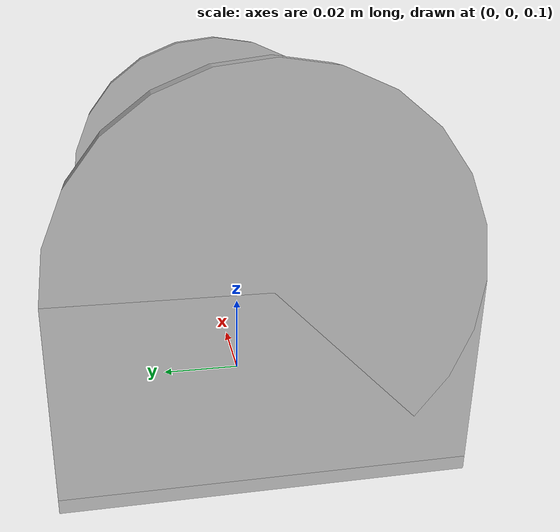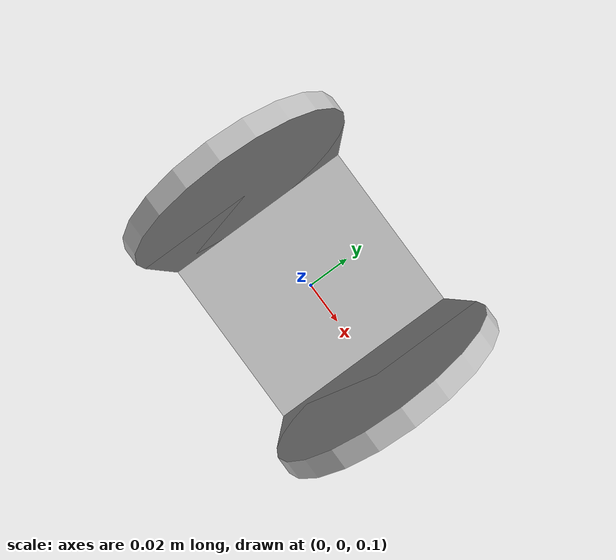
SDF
<?xml version='1.0'?>
<sdf version='1.4'>
  <model name="prototype_1">
  <static>true</static>

  <link name='Holder'>
        <pose>0 0 .1 0 0 0</pose>

        <collision name='bottom_collision'>
          <geometry>
            <box>
              <size>.091698 .087898 .0064</size>
            </box>
          </geometry>
        </collision>

        <visual name='bottom_visual'>
          <geometry>
            <box>
              <size>.091698 .087898 .0064</size>
            </box>
          </geometry>
        </visual>

      <collision name='LeftSide_collision'>
      	<pose> 0.042649 0 .0213745 0 0 0</pose>
          <geometry>
            <box>
              <size>.0064 .087898 .042749</size>
            </box>
          </geometry>
      </collision>

      <visual name='LeftSide_visual'>
        	<pose> 0.042649 0 .0213745 0 0 0</pose>
          <geometry>
            <box>
              <size>.0064 .087898 .042749</size>
            </box>
          </geometry>
       </visual>

       <collision name='RightSide_collision'>
      	<pose> -0.042649 0 .0213745 0 0 0</pose>
          <geometry>
            <box>
              <size>.0064 .087898 .042749</size>
            </box>
          </geometry>
      </collision>

      <visual name='RightSide_visual'>
        	<pose> -0.042649 0 .0213745 0 0 0</pose>
          <geometry>
            <box>
              <size>.0064 .087898 .042749</size>
            </box>
          </geometry>
       </visual>

 			<collision name='LeftSideTop_collision'>
      	<pose> 0.042649 0 .042749 1.5707 0 1.5707</pose>
          <geometry>
            <cylinder>
          		<radius>.043949</radius>
          		<length>.0064</length>
        		</cylinder>
          </geometry>
      </collision>

      <visual name='LeftSideTop_visual'>
        	<pose> 0.042649 0 .042749 1.5707 0 1.5707</pose>
          <geometry>
            <cylinder>
          		<radius>.043949</radius>
          		<length>.0064</length>
        		</cylinder>
          </geometry>
       </visual>

			<collision name='RightSideTop_collision'>
      	<pose> -0.042649 0 .042749 1.5707 0 1.5707</pose>
          <geometry>
            <cylinder>
          		<radius>.043949</radius>
          		<length>.0064</length>
        		</cylinder>
          </geometry>
      </collision>

      <visual name='RightSideTop_visual'>
        	<pose> -0.042649 0 .042749 1.5707 0 1.5707</pose>
          <geometry>
            <cylinder>
          		<radius>.043949</radius>
          		<length>.0064</length>
        		</cylinder>
          </geometry>
       </visual>

		</link>
  </model>
</sdf>
